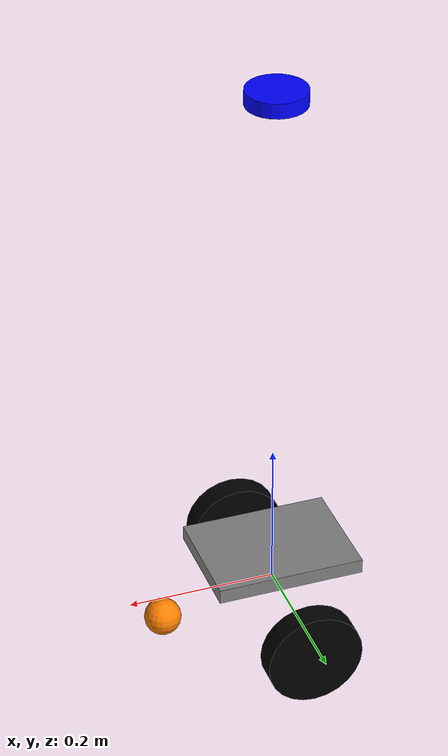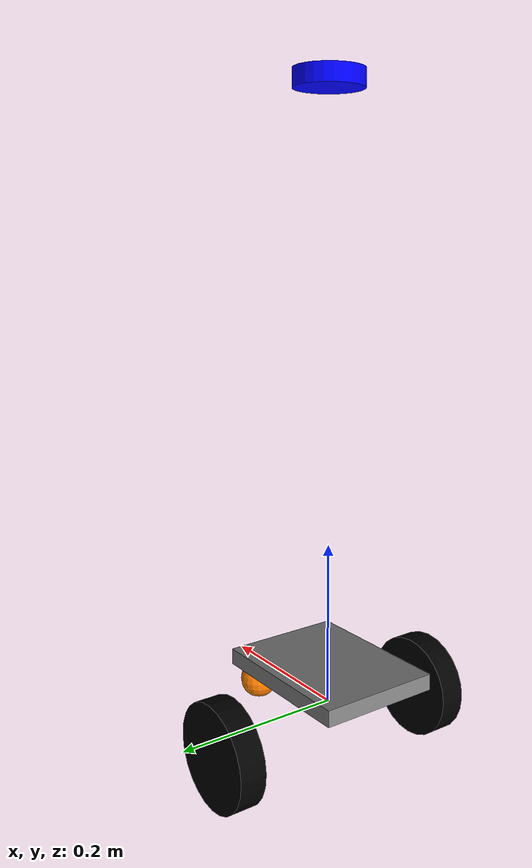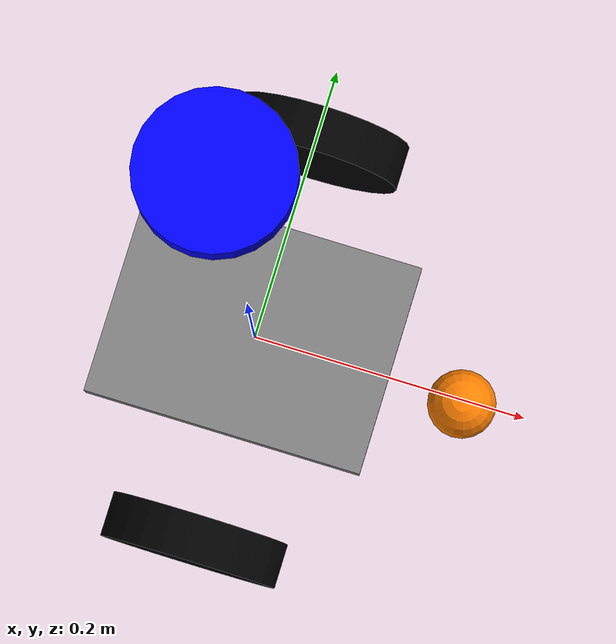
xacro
<?xml version="1.0"?>
<robot name="my_robot" xmlns:xacro="http://ros.org/wiki/xacro">

  <!-- Base link -->
  <link name="base_link">
    <visual>
      <geometry>
        <box size="0.20 0.15 0.02"/> <!-- กว้าง 15 cm ยาว 20 cm หนา 2 cm -->
      </geometry>
      <origin xyz="0 0 0.0425" rpy="0 0 0"/> <!-- ชั้นแรกสูงจากพื้น 8 cm -->
      <material name="grey">
        <color rgba="0.5 0.5 0.5 1.0"/>
      </material>
    </visual>
  </link>

  <!-- Left wheel -->
  <link name="left_wheel">
    <visual>
      <geometry>
        <cylinder radius="0.065" length="0.0325"/> <!-- รัศมี 3 cm -->
      </geometry>
      <origin xyz="0 0.075 0.03" rpy="1.5708 0 0"/> <!-- ล้อแตะพื้น -->
      <material name="black">
        <color rgba="0 0 0 1"/>
      </material>
    </visual>
  </link>

  <!-- Right wheel -->
  <link name="right_wheel">
    <visual>
      <geometry>
        <cylinder radius="0.065" length="0.0325"/>
      </geometry>
      <origin xyz="0 -0.075 0.03" rpy="1.5708 0 0"/>
      <material name="black"/>
    </visual>
  </link>

  <!-- Front caster -->
  <link name="front_caster">
    <visual>
      <geometry>
        <sphere radius="0.025"/>
      </geometry>
      <origin xyz="0.075 0 0.025" rpy="0 0 0"/> <!-- แตะพื้นเหมือนล้อ -->
      <material name="orange">
        <color rgba="1 0.5 0 1"/>
      </material>
    </visual>
  </link>

  <!-- LiDAR -->
  <link name="laser_frame">
    <visual>
      <geometry>
        <cylinder radius="0.04" length="0.02"/>
      </geometry>
      <origin xyz="0 0 0.369675" rpy="0 0 0"/> <!-- ชั้น3 สูงจากพื้น 0.43 m -->
      <material name="blue">
        <color rgba="0 0 1 1"/>
      </material>
    </visual>
  </link>

  <!-- JOINTS -->
  <joint name="base_to_left_wheel" type="fixed">
    <parent link="base_link"/>
    <child link="left_wheel"/>
    <origin xyz="0 0.075 -0.05" rpy="0 0 0"/> <!-- ปรับให้ล้อชนพื้น -->
  </joint>

  <joint name="base_to_right_wheel" type="fixed">
    <parent link="base_link"/>
    <child link="right_wheel"/>
    <origin xyz="0 -0.075 -0.05" rpy="0 0 0"/>
  </joint>

  <joint name="base_to_front_caster" type="fixed">
    <parent link="base_link"/>
    <child link="front_caster"/>
    <origin xyz="0.08 0 -0.055" rpy="0 0 0"/>
  </joint>

  <joint name="base_to_laser" type="fixed">
    <parent link="base_link"/>
    <child link="laser_frame"/>
    <origin xyz="0 0 0.35" rpy="0 0 0"/> <!-- z จาก base_link ถึง LiDAR = 0.35 m -->
  </joint>

</robot>
